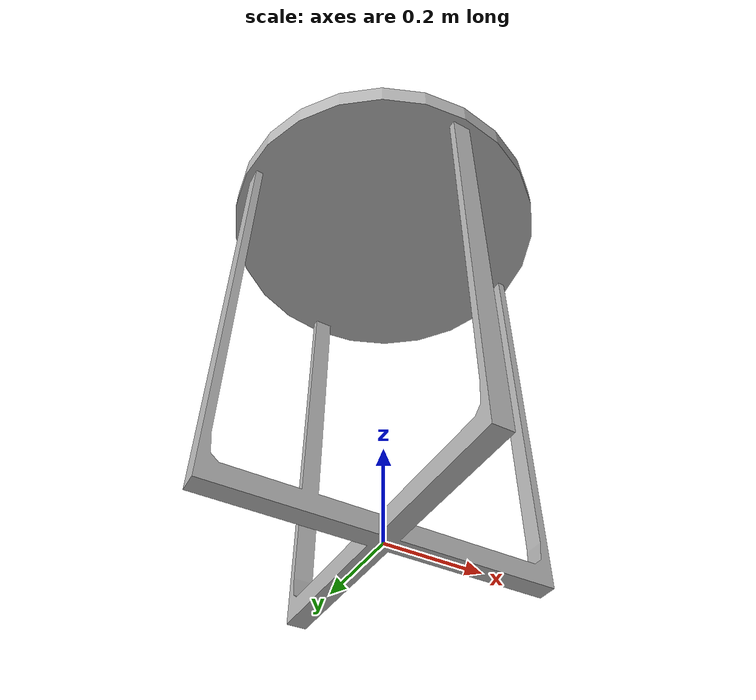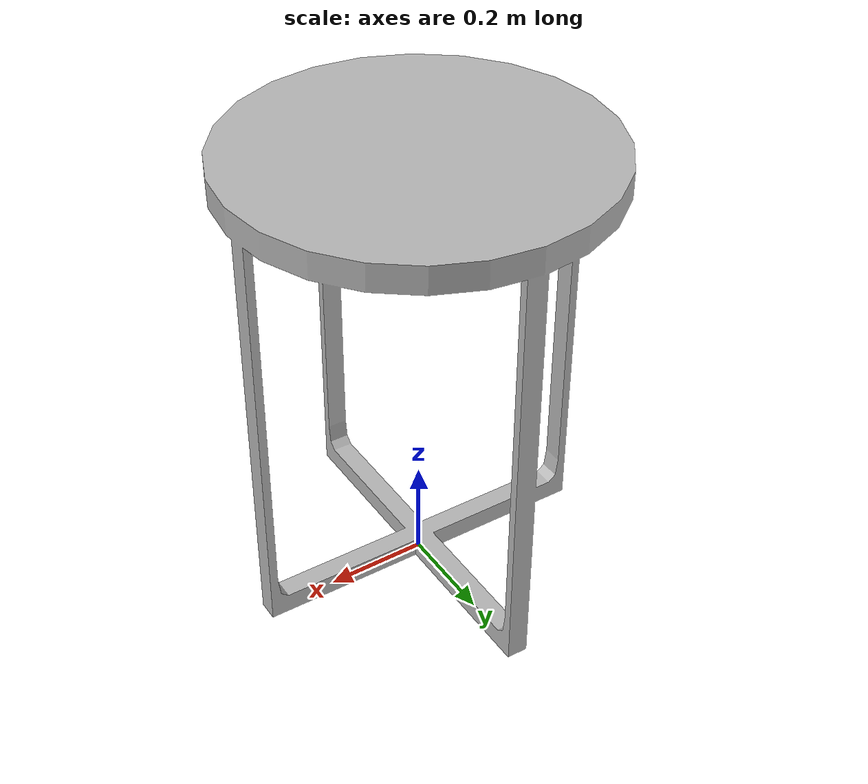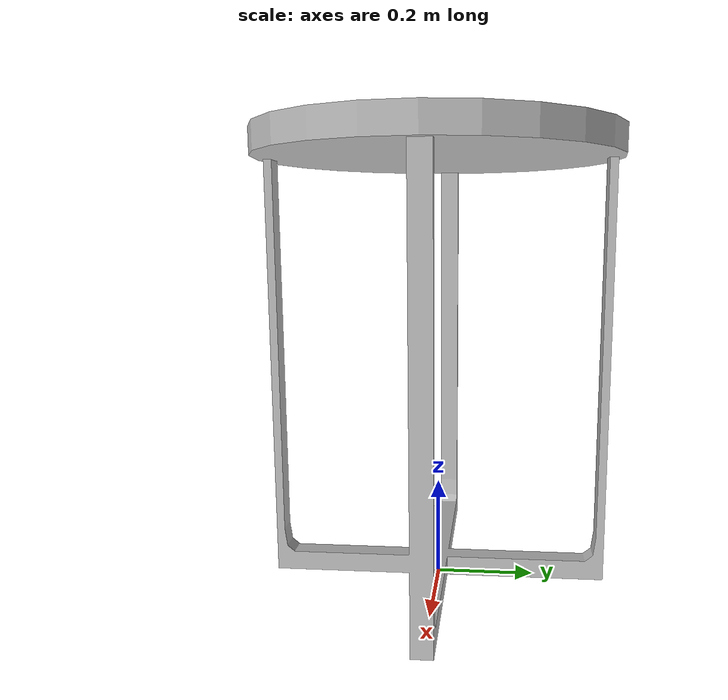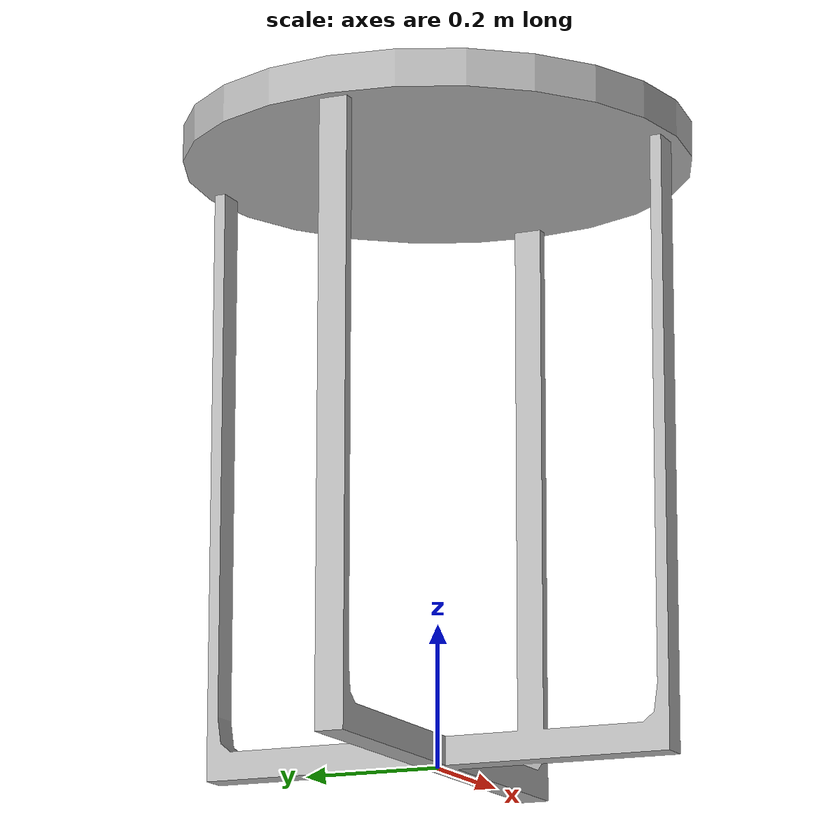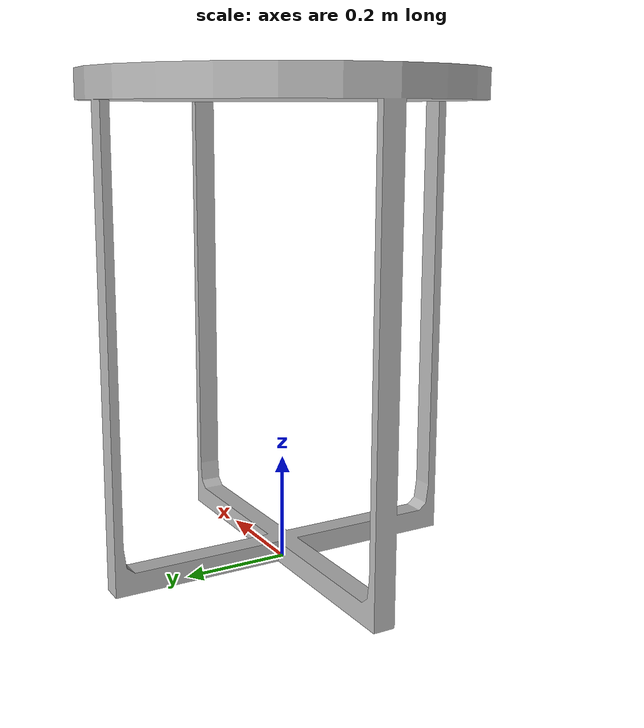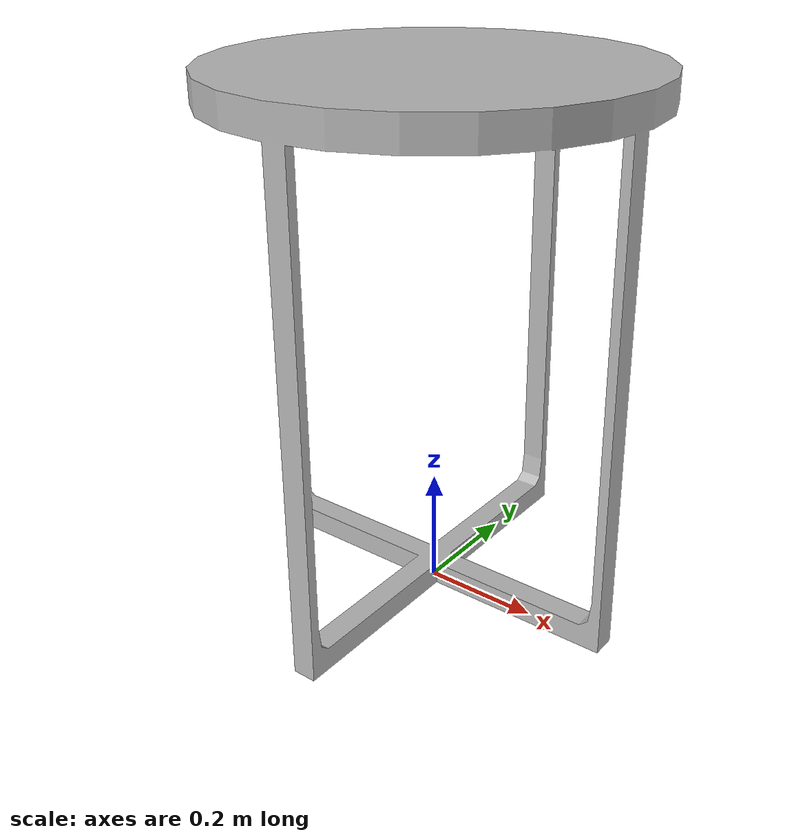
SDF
<?xml version="1.0"?>

<sdf version="1.6">
  <model name='CoffeeTable'>
    <link name="body">
      <pose>0 0 0 0 0 0</pose>

      <visual name="visual">
        <geometry>
          <mesh>
            <uri>model://CoffeeTable/meshes/CoffeeTable.obj</uri>
            <scale>0.00817 0.00817 0.02</scale>
          </mesh>
        </geometry>
      </visual>

      <collision name="collision">
        <geometry>
          <mesh>
            <uri>model://CoffeeTable/meshes/CoffeeTable.obj</uri>
            <scale>0.00817 0.00817 0.02</scale>
          </mesh>
        </geometry>
      </collision>

    </link>
  </model>
</sdf>
